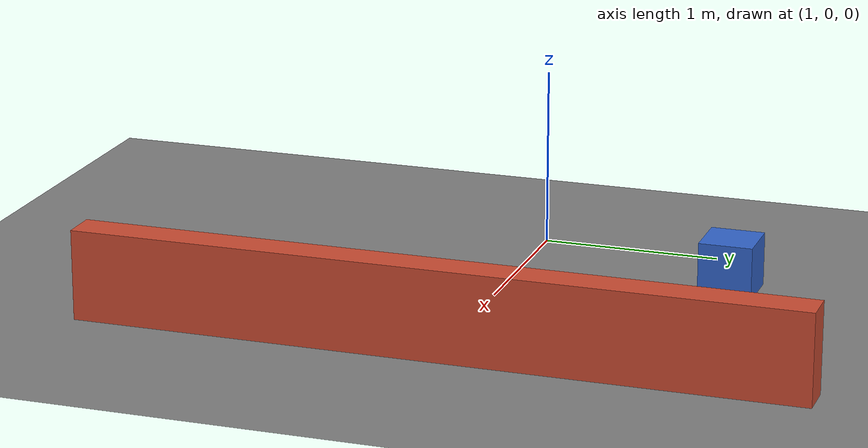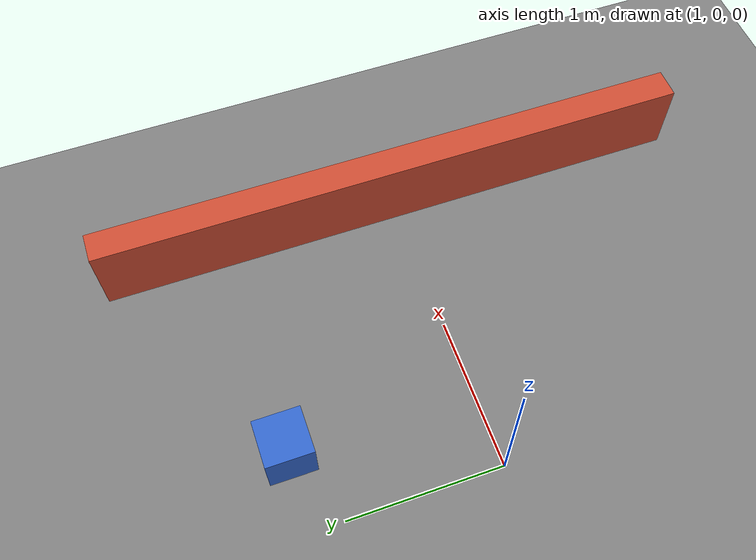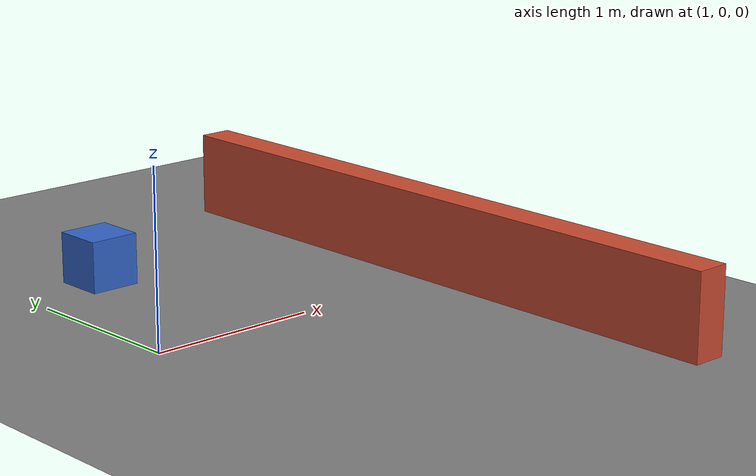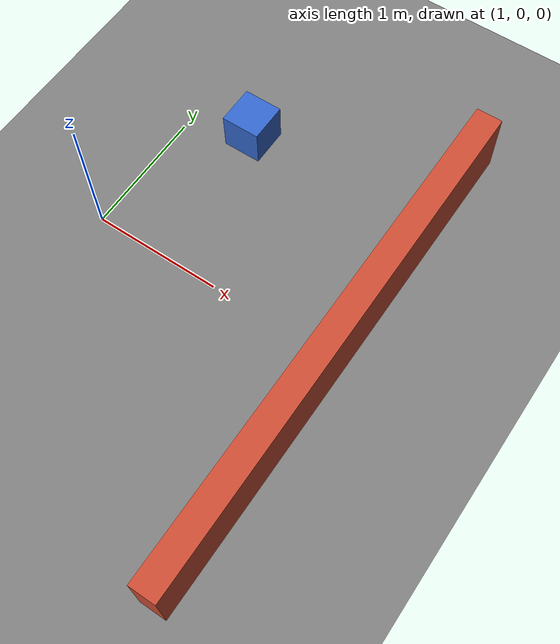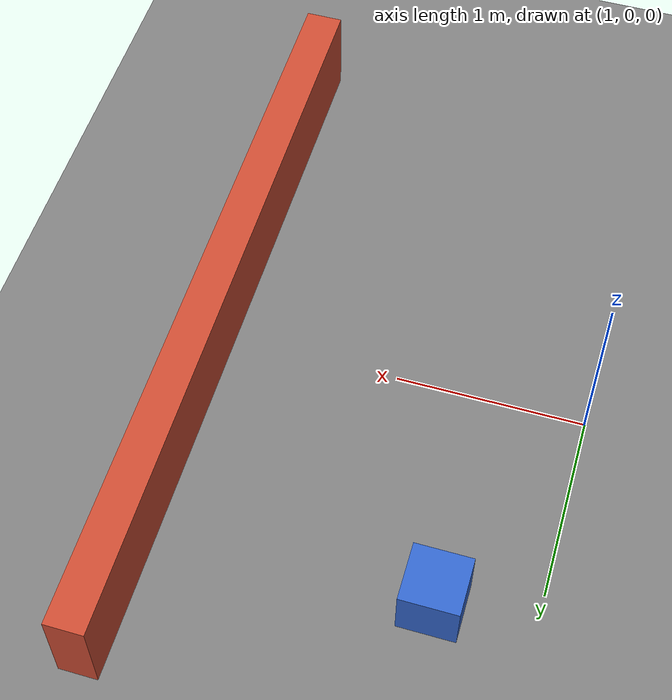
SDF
<?xml version="1.0"?>
<sdf version="1.8">
  <world name="wes_world">

    <plugin filename="ignition-gazebo-physics-system"
            name="ignition::gazebo::systems::Physics"/>
    <plugin filename="ignition-gazebo-sensors-system"
            name="ignition::gazebo::systems::Sensors">
      <render_engine>ogre2</render_engine>
    </plugin>
    <plugin filename="ignition-gazebo-user-commands-system"
            name="ignition::gazebo::systems::UserCommands"/>
    <plugin filename="ignition-gazebo-scene-broadcaster-system"
            name="ignition::gazebo::systems::SceneBroadcaster"/>

    <light type="directional" name="sun">
      <cast_shadows>true</cast_shadows>
      <pose>0 0 10 0 0 0</pose>
      <diffuse>0.8 0.8 0.8 1</diffuse>
      <specular>0.2 0.2 0.2 1</specular>
      <direction>-0.5 0.1 -0.9</direction>
    </light>

    <!-- 地板 -->
    <model name="ground_plane">
      <static>true</static>
      <link name="link">
        <collision name="collision">
          <geometry><plane><normal>0 0 1</normal><size>50 50</size></plane></geometry>
        </collision>
        <visual name="visual">
          <geometry><plane><normal>0 0 1</normal><size>50 50</size></plane></geometry>
          <material>
            <ambient>0.3 0.3 0.3 1</ambient>
            <diffuse>0.5 0.5 0.5 1</diffuse>
          </material>
        </visual>
      </link>
    </model>

    <!-- 幾個牆 / 障礙物，方便之後練光達建圖與避障 -->
    <model name="wall_1">
      <static>true</static>
      <pose>3 0 0.25 0 0 0</pose>
      <link name="link">
        <collision name="c"><geometry><box><size>0.2 4 0.5</size></box></geometry></collision>
        <visual name="v">
          <geometry><box><size>0.2 4 0.5</size></box></geometry>
          <material><ambient>0.7 0.3 0.2 1</ambient><diffuse>0.8 0.3 0.2 1</diffuse></material>
        </visual>
      </link>
    </model>

    <model name="box_1">
      <static>true</static>
      <pose>1.5 1.2 0.15 0 0 0</pose>
      <link name="link">
        <collision name="c"><geometry><box><size>0.3 0.3 0.3</size></box></geometry></collision>
        <visual name="v">
          <geometry><box><size>0.3 0.3 0.3</size></box></geometry>
          <material><ambient>0.2 0.4 0.7 1</ambient><diffuse>0.2 0.4 0.8 1</diffuse></material>
        </visual>
      </link>
    </model>

  </world>
</sdf>
